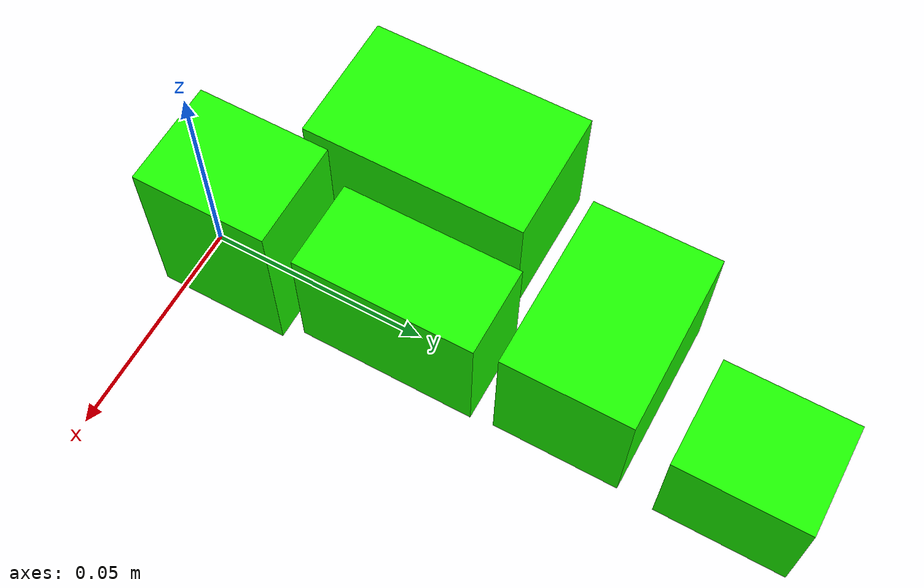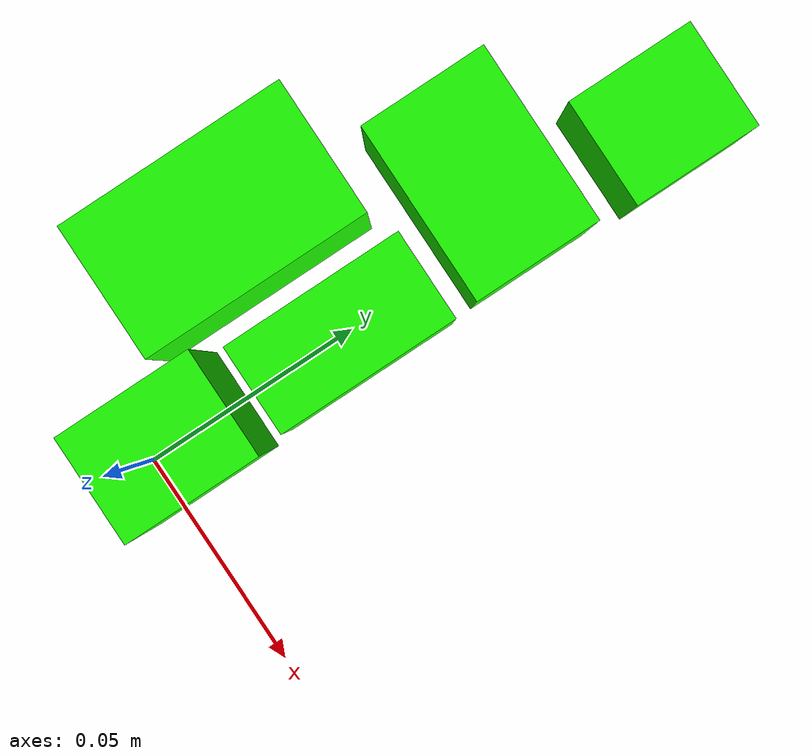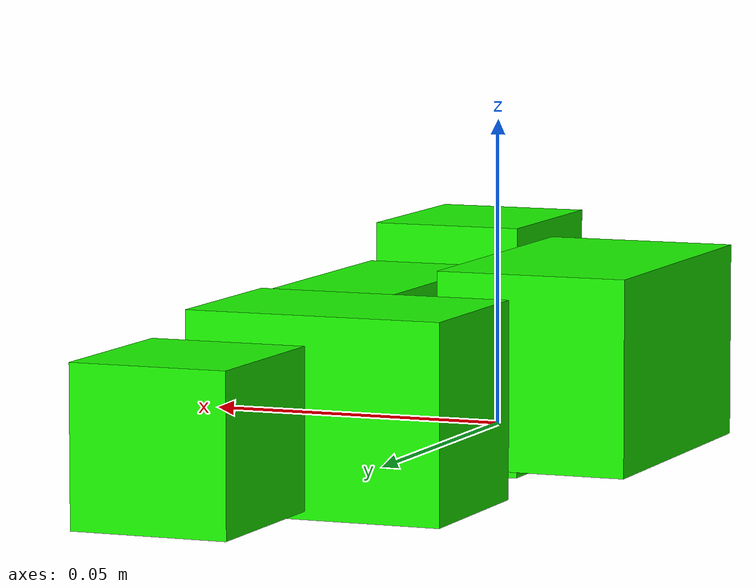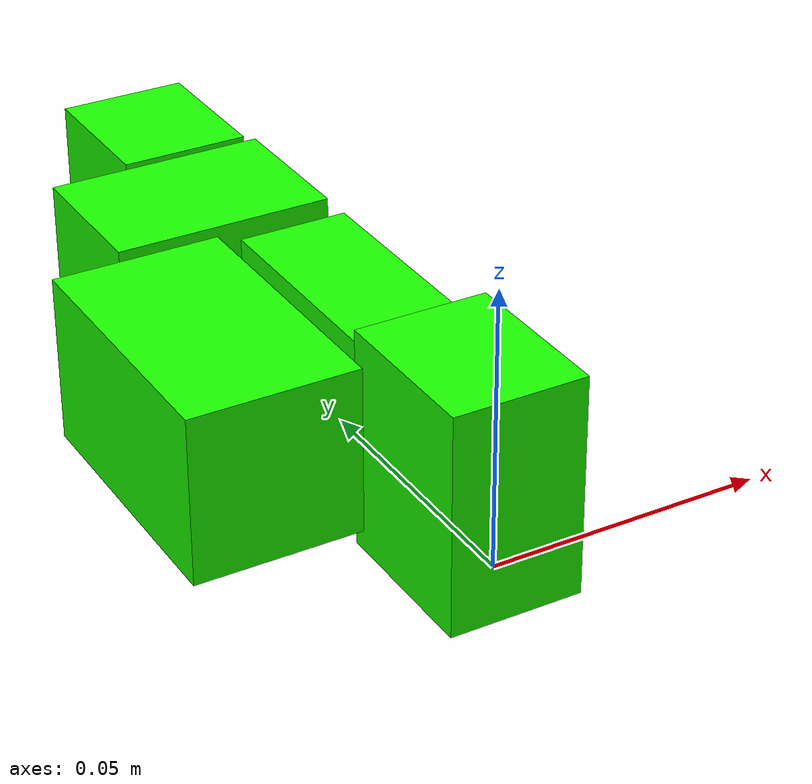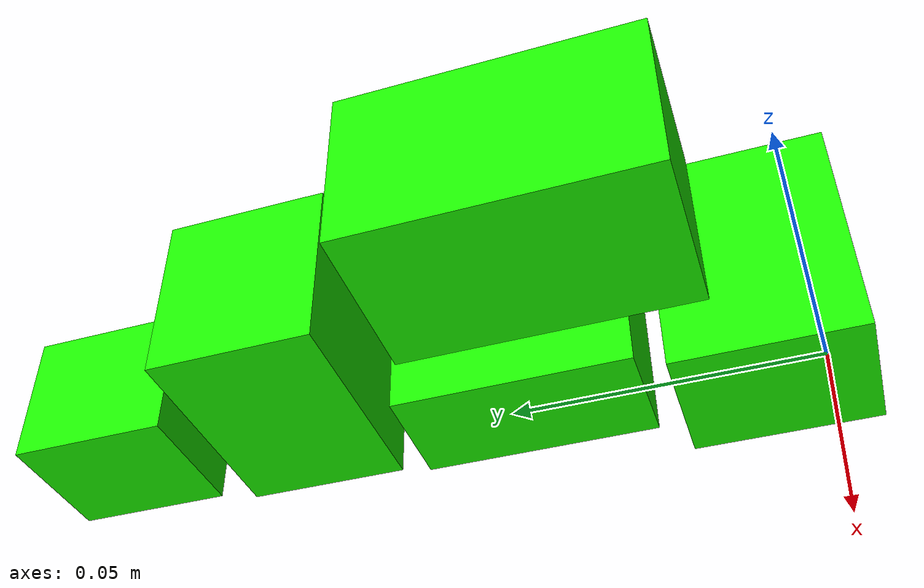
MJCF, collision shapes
<?xml version="1.0"?>
<mujoco>
  <compiler angle="radian" meshdir="assets" autolimits="true"/>
  <asset>
    <material name="gray" rgba="0.4 0.4 0.4 1"/>
    <material name="yellow" rgba="0.866667 0.866667 0.0509804 1"/>
    <material name="light_orange" rgba="1 0.749 0 1"/>
    <material name="green" rgba="0.11 1 0 0.2"/>
    <mesh file="dip.stl"/>
    <mesh file="pip.stl"/>
    <mesh file="fingertip.stl"/>
    <mesh file="mcp_joint.stl"/>
  </asset>
  <default>
    <default class="finger">
      <material specular="0.5" shininess="0.25"/>
      <default class="visual">
        <geom type="mesh" contype="0" conaffinity="0" group="2"/>
      </default>
      <default class="collision_box">
        <geom group="3" type="box" mass="0" material="green"/>
      </default>
      <joint axis="0 0 -1" damping="2000"/>
    </default>
  </default>
  <worldbody>
    <body name="knuckle" >
      <joint name="j0" range="-0.314 2.23"/>
      <inertial mass="0.044" pos="0 0 0" diaginertia="1.47756e-05 1.31982e-05 6.0802e-06"/>
      <geom class="visual" pos="0.0084069 0.00776624 0.0146574" quat="1 0 0 0" mesh="mcp_joint" material="gray"/>
      <geom name="knuckle_b_1" class="collision_box" pos="0.0 0.008 0.015" euler="0 0 0" size="0.012 0.015 0.02"/>
      <geom name="knuckle_b_2" class="collision_box" pos="-0.03 0.04 0.018" euler="0 0 0" size="0.015 0.025 0.015"/>
      <body name="proximal" pos="-0.0122 0.0381 0.0145" quat="0.5 -0.5 -0.5 0.5">
        <joint name="j1" range="-1.047 1.047"/>
        <inertial mass="0.032" pos="0 0 0" diaginertia="4.7981e-06 4.23406e-06 2.86184e-06"/>
        <geom class="visual" pos="0.00964336 0.0003 0.000784034" quat="0.5 -0.5 -0.5 -0.5" mesh="pip" material="yellow"/>
        <geom name="proximal_b_1" class="collision_box" pos="0.01 0.0 -0.013" euler="0 0 0" size="0.02 0.015 0.01"/>
        <body name="middle" pos="0.015 0.0143 -0.013" quat="0.5 0.5 -0.5 0.5">
          <joint name="j2" range="-0.506 1.885"/>
          <inertial mass="0.037" pos="0 0 0" diaginertia="6.68256e-06 6.24841e-06 5.02002e-06"/>
          <geom class="visual" pos="0.0211334 -0.00843212 0.00978509" quat="0 -1 0 0" mesh="dip" material="yellow"/>
          <geom name="middle_b_1" class="collision_box" pos="0.0105 -0.034 0.015" euler="0 0 0" size="0.02 0.014 0.015"/>
          <body name="distal" pos="-4.08806e-09 -0.0361 0.0002">
            <joint name="j3" range="-0.366 2.042"/>
            <inertial mass="0.016" pos="0 0 0" diaginertia="3.37527e-06 2.863e-06 1.54873e-06"/>
            <geom class="visual" pos="0.0132864 -0.00611424 0.0145" quat="0 1 0 0" mesh="fingertip" material="yellow"/>
            <geom name="distal_b_1" class="collision_box" pos="0.0009 -0.034 0.0145" euler="0 0 0" size="0.012 0.014 0.012"/>
          </body>
        </body>
      </body>
    </body>
  </worldbody>
  <actuator>
    <position name="actuator1" joint="j0" kp="2000"/>
    <position name="actuator2" joint="j1" kp="2000"/>
    <position name="actuator3" joint="j2" kp="2000"/>
    <position name="actuator4" joint="j3" kp="2000"/>
  </actuator>
</mujoco>
